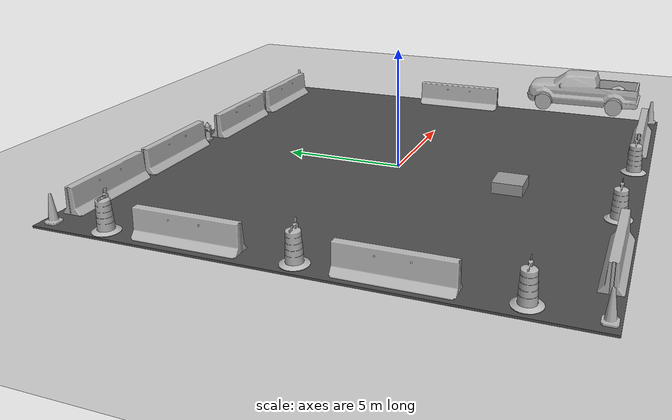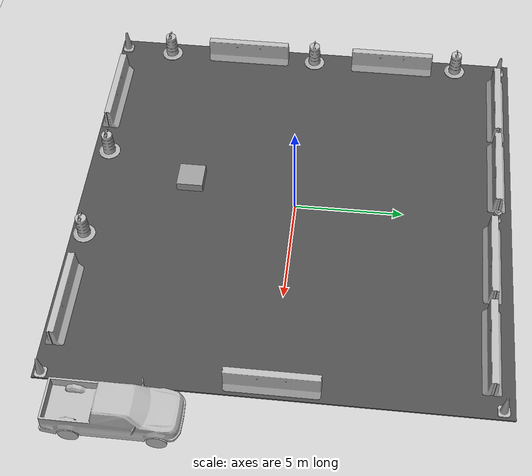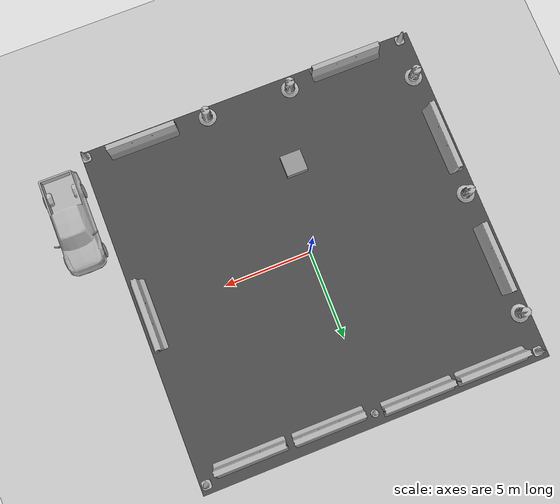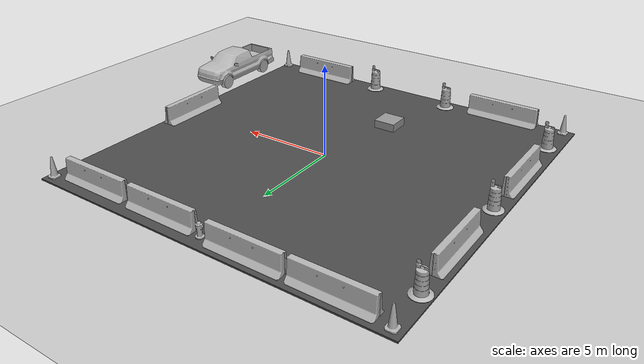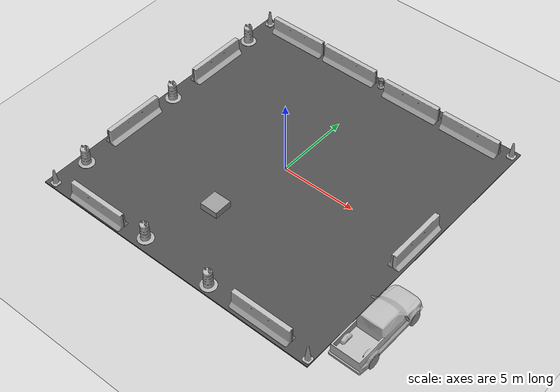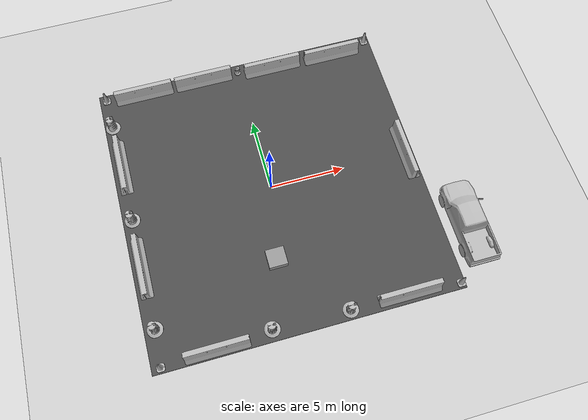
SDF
<sdf version="1.6">
 <world name="default">
  <light name="sun" type="directional">
   <pose>0 0 10 0 -0 0</pose>
   <diffuse>0.8 0.8 0.8 1</diffuse>
   <specular>0.2 0.2 0.2 1</specular>
   <attenuation>
    <range>1000</range>
    <constant>0.9</constant>
    <linear>0.01</linear>
    <quadratic>0.001</quadratic>
   </attenuation>
   <direction>-0.5 0.1 -0.9</direction>
  </light>
  <model name="ground_plane">
   <static>1</static>
   <link name="link">
    <collision name="collision">
     <geometry><plane><normal>0 0 1</normal><size>100 100</size></plane></geometry>
     <surface><friction><ode><mu>100</mu><mu2>50</mu2></ode></friction></surface>
    </collision>
    <visual name="visual">
     <cast_shadows>0</cast_shadows>
     <geometry><plane><normal>0 0 1</normal><size>100 100</size></plane></geometry>
     <material>
      <script><uri>file://media/materials/scripts/gazebo.material</uri><name>Gazebo/Grey</name></script>
     </material>
    </visual>
    <velocity_decay><linear>0</linear><angular>0</angular></velocity_decay>
   </link>
  </model>
  <physics name="default_physics" default="0" type="ode">
   <max_step_size>0.01</max_step_size>
   <real_time_factor>1</real_time_factor>
   <real_time_update_rate>100</real_time_update_rate>
  </physics>
  <scene><ambient>0.4 0.4 0.4 1</ambient><background>0.7 0.7 0.7 1</background><shadows>1</shadows></scene>
  <model name="asphalt_plane">
   <static>1</static>
   <link name="link">
    <collision name="collision"><geometry><box><size>20 20 0.1</size></box></geometry></collision>
    <visual name="visual">
     <cast_shadows>0</cast_shadows>
     <geometry><box><size>20 20 0.1</size></box></geometry>
     <material>
      <script>
       <uri>model://asphalt_plane/materials/scripts</uri>
       <uri>model://asphalt_plane/materials/textures</uri>
       <name>vrc/asphalt</name>
      </script>
     </material>
    </visual>
    <velocity_decay><linear>0</linear><angular>0</angular></velocity_decay>
   </link>
  </model>
  <gravity>0 0 -9.8</gravity>
  <magnetic_field>6e-06 2.3e-05 -4.2e-05</magnetic_field>
  <atmosphere type="adiabatic"/>
  <spherical_coordinates>
   <surface_model>EARTH_WGS84</surface_model>
   <latitude_deg>0</latitude_deg>
   <longitude_deg>0</longitude_deg>
   <elevation>0</elevation>
   <heading_deg>0</heading_deg>
  </spherical_coordinates>
  <model name="drywall_stack">
   <static>1</static>
   <link name="link">
    <collision name="collision">
     <geometry><box><size>1.2192 1.2192 0.5</size></box></geometry>
     <surface><contact><ode><max_vel>0</max_vel><min_depth>0.001</min_depth></ode></contact></surface>
    </collision>
    <visual name="visual">
     <cast_shadows>0</cast_shadows>
     <geometry><box><size>1.2192 1.2192 0.5</size></box></geometry>
     <material>
      <script>
       <uri>model://grey_wall/materials/scripts</uri>
       <uri>model://grey_wall/materials/textures</uri>
       <name>vrc/grey_wall</name>
      </script>
     </material>
    </visual>
    <inertial>
     <inertia><ixx>1</ixx><ixy>0</ixy><ixz>0</ixz><iyy>1</iyy><iyz>0</iyz><izz>1</izz></inertia>
     <mass>1</mass>
    </inertial>
   </link>
   <pose>-1 -5 0.25 0 -0 0</pose>
  </model>
  <model name="Construction Cone">
   <link name="link">
    <collision name="collision">
     <geometry>
      <mesh><scale>10 10 10</scale><uri>model://construction_cone/meshes/construction_cone.dae</uri></mesh>
     </geometry>
    </collision>
    <visual name="visual">
     <geometry>
      <mesh><scale>10 10 10</scale><uri>model://construction_cone/meshes/construction_cone.dae</uri></mesh>
     </geometry>
    </visual>
    <inertial>
     <inertia><ixx>1</ixx><ixy>0</ixy><ixz>0</ixz><iyy>1</iyy><iyz>0</iyz><izz>1</izz></inertia>
     <mass>1</mass>
    </inertial>
   </link>
   <pose>-9.5017 9.51183 0.049102 3e-06 -1e-05 4e-06</pose>
  </model>
  <model name="Construction Cone_0">
   <link name="link">
    <collision name="collision">
     <geometry>
      <mesh><scale>10 10 10</scale><uri>model://construction_cone/meshes/construction_cone.dae</uri></mesh>
     </geometry>
    </collision>
    <visual name="visual">
     <geometry>
      <mesh><scale>10 10 10</scale><uri>model://construction_cone/meshes/construction_cone.dae</uri></mesh>
     </geometry>
    </visual>
    <inertial>
     <inertia><ixx>1</ixx><ixy>0</ixy><ixz>0</ixz><iyy>1</iyy><iyz>0</iyz><izz>1</izz></inertia>
     <mass>1</mass>
    </inertial>
   </link>
   <pose>9.6388 9.50306 0.049102 3e-06 -1e-05 4e-06</pose>
  </model>
  <model name="Construction Cone_1">
   <link name="link">
    <collision name="collision">
     <geometry>
      <mesh><scale>10 10 10</scale><uri>model://construction_cone/meshes/construction_cone.dae</uri></mesh>
     </geometry>
    </collision>
    <visual name="visual">
     <geometry>
      <mesh><scale>10 10 10</scale><uri>model://construction_cone/meshes/construction_cone.dae</uri></mesh>
     </geometry>
    </visual>
    <inertial>
     <inertia><ixx>1</ixx><ixy>0</ixy><ixz>0</ixz><iyy>1</iyy><iyz>0</iyz><izz>1</izz></inertia>
     <mass>1</mass>
    </inertial>
   </link>
   <pose>9.74412 -9.64201 0.049102 3e-06 -1e-05 0.001569</pose>
  </model>
  <model name="Construction Cone_2">
   <link name="link">
    <collision name="collision">
     <geometry>
      <mesh><scale>10 10 10</scale><uri>model://construction_cone/meshes/construction_cone.dae</uri></mesh>
     </geometry>
    </collision>
    <visual name="visual">
     <geometry>
      <mesh><scale>10 10 10</scale><uri>model://construction_cone/meshes/construction_cone.dae</uri></mesh>
     </geometry>
    </visual>
    <inertial>
     <inertia><ixx>1</ixx><ixy>0</ixy><ixz>0</ixz><iyy>1</iyy><iyz>0</iyz><izz>1</izz></inertia>
     <mass>1</mass>
    </inertial>
   </link>
   <pose>-9.41826 -9.66181 0.049102 3e-06 -1e-05 4e-06</pose>
  </model>
  <model name="Construction Barrel">
   <link name="link">
    <inertial>
     <pose>0 0 0.4 0 -0 0</pose>
     <mass>500</mass>
     <inertia><ixx>51.2096</ixx><iyy>51.2096</iyy><izz>25</izz><ixy>0</ixy><ixz>0</ixz><iyz>0</iyz></inertia>
    </inertial>
    <collision name="collision">
     <geometry><mesh><uri>model://construction_barrel/meshes/construction_barrel.dae</uri></mesh></geometry>
    </collision>
    <visual name="visual">
     <geometry><mesh><uri>model://construction_barrel/meshes/construction_barrel.dae</uri></mesh></geometry>
    </visual>
   </link>
   <pose>-9.30864 -7.32999 0.049916 -0.000166 -0.000342 -0.000302</pose>
  </model>
  <model name="Construction Barrel_1">
   <link name="link">
    <inertial>
     <pose>0 0 0.4 0 -0 0</pose>
     <mass>500</mass>
     <inertia><ixx>51.2096</ixx><iyy>51.2096</iyy><izz>25</izz><ixy>0</ixy><ixz>0</ixz><iyz>0</iyz></inertia>
    </inertial>
    <collision name="collision">
     <geometry><mesh><uri>model://construction_barrel/meshes/construction_barrel.dae</uri></mesh></geometry>
    </collision>
    <visual name="visual">
     <geometry><mesh><uri>model://construction_barrel/meshes/construction_barrel.dae</uri></mesh></geometry>
    </visual>
   </link>
   <pose>-9.36627 0.077142 0.049916 -0.000166 -0.000342 -0.000302</pose>
  </model>
  <model name="Construction Barrel_3">
   <link name="link">
    <inertial>
     <pose>0 0 0.4 0 -0 0</pose>
     <mass>500</mass>
     <inertia><ixx>51.2096</ixx><iyy>51.2096</iyy><izz>25</izz><ixy>0</ixy><ixz>0</ixz><iyz>0</iyz></inertia>
    </inertial>
    <collision name="collision">
     <geometry><mesh><uri>model://construction_barrel/meshes/construction_barrel.dae</uri></mesh></geometry>
    </collision>
    <visual name="visual">
     <geometry><mesh><uri>model://construction_barrel/meshes/construction_barrel.dae</uri></mesh></geometry>
    </visual>
   </link>
   <pose>-9.44723 7.27986 0.049916 -0.000166 -0.000342 -0.000302</pose>
  </model>
  <model name="fire_hydrant">
   <static>1</static>
   <link name="link">
    <collision name="collision">
     <geometry><mesh><uri>model://fire_hydrant/meshes/fire_hydrant.dae</uri></mesh></geometry>
    </collision>
    <visual name="visual">
     <geometry><mesh><uri>model://fire_hydrant/meshes/fire_hydrant.dae</uri></mesh></geometry>
    </visual>
   </link>
   <pose>-0.009225 9.3074 0 0 -0 0</pose>
  </model>
  <model name="Construction Barrel_4">
   <link name="link">
    <inertial>
     <pose>0 0 0.4 0 -0 0</pose>
     <mass>500</mass>
     <inertia><ixx>51.2096</ixx><iyy>51.2096</iyy><izz>25</izz><ixy>0</ixy><ixz>0</ixz><iyz>0</iyz></inertia>
    </inertial>
    <collision name="collision">
     <geometry><mesh><uri>model://construction_barrel/meshes/construction_barrel.dae</uri></mesh></geometry>
    </collision>
    <visual name="visual">
     <geometry><mesh><uri>model://construction_barrel/meshes/construction_barrel.dae</uri></mesh></geometry>
    </visual>
   </link>
   <pose>-2.42554 -9.24566 0.049916 -0.000166 -0.000342 -0.000302</pose>
  </model>
  <model name="Construction Barrel_5">
   <link name="link">
    <inertial>
     <pose>0 0 0.4 0 -0 0</pose>
     <mass>500</mass>
     <inertia><ixx>51.2096</ixx><iyy>51.2096</iyy><izz>25</izz><ixy>0</ixy><ixz>0</ixz><iyz>0</iyz></inertia>
    </inertial>
    <collision name="collision">
     <geometry><mesh><uri>model://construction_barrel/meshes/construction_barrel.dae</uri></mesh></geometry>
    </collision>
    <visual name="visual">
     <geometry><mesh><uri>model://construction_barrel/meshes/construction_barrel.dae</uri></mesh></geometry>
    </visual>
   </link>
   <pose>2.54624 -9.39427 0.049916 -0.000166 -0.000342 -0.000302</pose>
  </model>
  <model name="pickup">
   <static>1</static>
   <link name="link">
    <collision name="collision">
     <pose>0 0 0 0 0 -1.5708</pose>
     <geometry><mesh><uri>model://pickup/meshes/pickup.dae</uri></mesh></geometry>
    </collision>
    <visual name="visual">
     <pose>0 0 0 0 0 -1.5708</pose>
     <geometry><mesh><uri>model://pickup/meshes/pickup.dae</uri></mesh></geometry>
    </visual>
   </link>
   <pose>11.5 -6 0 0 -0 1.5707</pose>
  </model>
  <model name="jersey_barrier">
   <static>1</static>
   <link name="link">
    <visual name="visual">
     <geometry><mesh><uri>model://jersey_barrier/meshes/jersey_barrier.dae</uri></mesh></geometry>
    </visual>
    <collision name="upright">
     <pose>0 0 0.5715 0 -0 0</pose>
     <geometry><box><size>4.06542 0.3063 1.143</size></box></geometry>
    </collision>
    <collision name="base">
     <pose>0 0 0.032258 0 -0 0</pose>
     <geometry><box><size>4.06542 0.8107 0.064516</size></box></geometry>
    </collision>
    <collision name="base2">
     <pose>0 0 0.1 0 -0 0</pose>
     <geometry><box><size>4.06542 0.65 0.1</size></box></geometry>
    </collision>
    <collision name="base3">
     <pose>0 0 0.2 0 -0 0</pose>
     <geometry><box><size>4.06542 0.5 0.1</size></box></geometry>
    </collision>
    <collision name="left-angle">
     <pose>0 -0.224 0.2401 0.9 -0 0</pose>
     <geometry><box><size>4.06542 0.5 0.064516</size></box></geometry>
    </collision>
    <collision name="right-angle">
     <pose>0 0.224 0.2401 -0.9 0 0</pose>
     <geometry><box><size>4.06542 0.5 0.064516</size></box></geometry>
    </collision>
   </link>
   <pose>-6.80738 9.3233 0 0 -0 0</pose>
  </model>
  <model name="jersey_barrier_0">
   <static>1</static>
   <link name="link">
    <visual name="visual">
     <geometry><mesh><uri>model://jersey_barrier/meshes/jersey_barrier.dae</uri></mesh></geometry>
    </visual>
    <collision name="upright">
     <pose>0 0 0.5715 0 -0 0</pose>
     <geometry><box><size>4.06542 0.3063 1.143</size></box></geometry>
    </collision>
    <collision name="base">
     <pose>0 0 0.032258 0 -0 0</pose>
     <geometry><box><size>4.06542 0.8107 0.064516</size></box></geometry>
    </collision>
    <collision name="base2">
     <pose>0 0 0.1 0 -0 0</pose>
     <geometry><box><size>4.06542 0.65 0.1</size></box></geometry>
    </collision>
    <collision name="base3">
     <pose>0 0 0.2 0 -0 0</pose>
     <geometry><box><size>4.06542 0.5 0.1</size></box></geometry>
    </collision>
    <collision name="left-angle">
     <pose>0 -0.224 0.2401 0.9 -0 0</pose>
     <geometry><box><size>4.06542 0.5 0.064516</size></box></geometry>
    </collision>
    <collision name="right-angle">
     <pose>0 0.224 0.2401 -0.9 0 0</pose>
     <geometry><box><size>4.06542 0.5 0.064516</size></box></geometry>
    </collision>
   </link>
   <pose>-2.50571 9.32058 0 0 -0 0</pose>
  </model>
  <model name="jersey_barrier_1">
   <static>1</static>
   <link name="link">
    <visual name="visual">
     <geometry><mesh><uri>model://jersey_barrier/meshes/jersey_barrier.dae</uri></mesh></geometry>
    </visual>
    <collision name="upright">
     <pose>0 0 0.5715 0 -0 0</pose>
     <geometry><box><size>4.06542 0.3063 1.143</size></box></geometry>
    </collision>
    <collision name="base">
     <pose>0 0 0.032258 0 -0 0</pose>
     <geometry><box><size>4.06542 0.8107 0.064516</size></box></geometry>
    </collision>
    <collision name="base2">
     <pose>0 0 0.1 0 -0 0</pose>
     <geometry><box><size>4.06542 0.65 0.1</size></box></geometry>
    </collision>
    <collision name="base3">
     <pose>0 0 0.2 0 -0 0</pose>
     <geometry><box><size>4.06542 0.5 0.1</size></box></geometry>
    </collision>
    <collision name="left-angle">
     <pose>0 -0.224 0.2401 0.9 -0 0</pose>
     <geometry><box><size>4.06542 0.5 0.064516</size></box></geometry>
    </collision>
    <collision name="right-angle">
     <pose>0 0.224 0.2401 -0.9 0 0</pose>
     <geometry><box><size>4.06542 0.5 0.064516</size></box></geometry>
    </collision>
   </link>
   <pose>-9.37824 -3.29907 0 0 -0 1.5708</pose>
  </model>
  <model name="jersey_barrier_2">
   <static>1</static>
   <link name="link">
    <visual name="visual">
     <geometry><mesh><uri>model://jersey_barrier/meshes/jersey_barrier.dae</uri></mesh></geometry>
    </visual>
    <collision name="upright">
     <pose>0 0 0.5715 0 -0 0</pose>
     <geometry><box><size>4.06542 0.3063 1.143</size></box></geometry>
    </collision>
    <collision name="base">
     <pose>0 0 0.032258 0 -0 0</pose>
     <geometry><box><size>4.06542 0.8107 0.064516</size></box></geometry>
    </collision>
    <collision name="base2">
     <pose>0 0 0.1 0 -0 0</pose>
     <geometry><box><size>4.06542 0.65 0.1</size></box></geometry>
    </collision>
    <collision name="base3">
     <pose>0 0 0.2 0 -0 0</pose>
     <geometry><box><size>4.06542 0.5 0.1</size></box></geometry>
    </collision>
    <collision name="left-angle">
     <pose>0 -0.224 0.2401 0.9 -0 0</pose>
     <geometry><box><size>4.06542 0.5 0.064516</size></box></geometry>
    </collision>
    <collision name="right-angle">
     <pose>0 0.224 0.2401 -0.9 0 0</pose>
     <geometry><box><size>4.06542 0.5 0.064516</size></box></geometry>
    </collision>
   </link>
   <pose>-9.34114 4.04109 0 0 -0 1.5708</pose>
  </model>
  <model name="jersey_barrier_3">
   <static>1</static>
   <link name="link">
    <visual name="visual">
     <geometry><mesh><uri>model://jersey_barrier/meshes/jersey_barrier.dae</uri></mesh></geometry>
    </visual>
    <collision name="upright">
     <pose>0 0 0.5715 0 -0 0</pose>
     <geometry><box><size>4.06542 0.3063 1.143</size></box></geometry>
    </collision>
    <collision name="base">
     <pose>0 0 0.032258 0 -0 0</pose>
     <geometry><box><size>4.06542 0.8107 0.064516</size></box></geometry>
    </collision>
    <collision name="base2">
     <pose>0 0 0.1 0 -0 0</pose>
     <geometry><box><size>4.06542 0.65 0.1</size></box></geometry>
    </collision>
    <collision name="base3">
     <pose>0 0 0.2 0 -0 0</pose>
     <geometry><box><size>4.06542 0.5 0.1</size></box></geometry>
    </collision>
    <collision name="left-angle">
     <pose>0 -0.224 0.2401 0.9 -0 0</pose>
     <geometry><box><size>4.06542 0.5 0.064516</size></box></geometry>
    </collision>
    <collision name="right-angle">
     <pose>0 0.224 0.2401 -0.9 0 0</pose>
     <geometry><box><size>4.06542 0.5 0.064516</size></box></geometry>
    </collision>
   </link>
   <pose>-5.91557 -9.52548 0 0 -0 0</pose>
  </model>
  <model name="jersey_barrier_4">
   <static>1</static>
   <link name="link">
    <visual name="visual">
     <geometry><mesh><uri>model://jersey_barrier/meshes/jersey_barrier.dae</uri></mesh></geometry>
    </visual>
    <collision name="upright">
     <pose>0 0 0.5715 0 -0 0</pose>
     <geometry><box><size>4.06542 0.3063 1.143</size></box></geometry>
    </collision>
    <collision name="base">
     <pose>0 0 0.032258 0 -0 0</pose>
     <geometry><box><size>4.06542 0.8107 0.064516</size></box></geometry>
    </collision>
    <collision name="base2">
     <pose>0 0 0.1 0 -0 0</pose>
     <geometry><box><size>4.06542 0.65 0.1</size></box></geometry>
    </collision>
    <collision name="base3">
     <pose>0 0 0.2 0 -0 0</pose>
     <geometry><box><size>4.06542 0.5 0.1</size></box></geometry>
    </collision>
    <collision name="left-angle">
     <pose>0 -0.224 0.2401 0.9 -0 0</pose>
     <geometry><box><size>4.06542 0.5 0.064516</size></box></geometry>
    </collision>
    <collision name="right-angle">
     <pose>0 0.224 0.2401 -0.9 0 0</pose>
     <geometry><box><size>4.06542 0.5 0.064516</size></box></geometry>
    </collision>
   </link>
   <pose>6.39443 -9.39745 0 0 -0 0</pose>
  </model>
  <model name="jersey_barrier_6">
   <static>1</static>
   <link name="link">
    <visual name="visual">
     <geometry><mesh><uri>model://jersey_barrier/meshes/jersey_barrier.dae</uri></mesh></geometry>
    </visual>
    <collision name="upright">
     <pose>0 0 0.5715 0 -0 0</pose>
     <geometry><box><size>4.06542 0.3063 1.143</size></box></geometry>
    </collision>
    <collision name="base">
     <pose>0 0 0.032258 0 -0 0</pose>
     <geometry><box><size>4.06542 0.8107 0.064516</size></box></geometry>
    </collision>
    <collision name="base2">
     <pose>0 0 0.1 0 -0 0</pose>
     <geometry><box><size>4.06542 0.65 0.1</size></box></geometry>
    </collision>
    <collision name="base3">
     <pose>0 0 0.2 0 -0 0</pose>
     <geometry><box><size>4.06542 0.5 0.1</size></box></geometry>
    </collision>
    <collision name="left-angle">
     <pose>0 -0.224 0.2401 0.9 -0 0</pose>
     <geometry><box><size>4.06542 0.5 0.064516</size></box></geometry>
    </collision>
    <collision name="right-angle">
     <pose>0 0.224 0.2401 -0.9 0 0</pose>
     <geometry><box><size>4.06542 0.5 0.064516</size></box></geometry>
    </collision>
   </link>
   <pose>2.50767 9.08821 0 0 -0 0</pose>
  </model>
  <model name="jersey_barrier_7">
   <static>1</static>
   <link name="link">
    <visual name="visual">
     <geometry><mesh><uri>model://jersey_barrier/meshes/jersey_barrier.dae</uri></mesh></geometry>
    </visual>
    <collision name="upright">
     <pose>0 0 0.5715 0 -0 0</pose>
     <geometry><box><size>4.06542 0.3063 1.143</size></box></geometry>
    </collision>
    <collision name="base">
     <pose>0 0 0.032258 0 -0 0</pose>
     <geometry><box><size>4.06542 0.8107 0.064516</size></box></geometry>
    </collision>
    <collision name="base2">
     <pose>0 0 0.1 0 -0 0</pose>
     <geometry><box><size>4.06542 0.65 0.1</size></box></geometry>
    </collision>
    <collision name="base3">
     <pose>0 0 0.2 0 -0 0</pose>
     <geometry><box><size>4.06542 0.5 0.1</size></box></geometry>
    </collision>
    <collision name="left-angle">
     <pose>0 -0.224 0.2401 0.9 -0 0</pose>
     <geometry><box><size>4.06542 0.5 0.064516</size></box></geometry>
    </collision>
    <collision name="right-angle">
     <pose>0 0.224 0.2401 -0.9 0 0</pose>
     <geometry><box><size>4.06542 0.5 0.064516</size></box></geometry>
    </collision>
   </link>
   <pose>6.95195 9.02949 0 0 -0 0</pose>
  </model>
  <model name="jersey_barrier_5">
   <static>1</static>
   <link name="link">
    <visual name="visual">
     <geometry><mesh><uri>model://jersey_barrier/meshes/jersey_barrier.dae</uri></mesh></geometry>
    </visual>
    <collision name="upright">
     <pose>0 0 0.5715 0 -0 0</pose>
     <geometry><box><size>4.06542 0.3063 1.143</size></box></geometry>
    </collision>
    <collision name="base">
     <pose>0 0 0.032258 0 -0 0</pose>
     <geometry><box><size>4.06542 0.8107 0.064516</size></box></geometry>
    </collision>
    <collision name="base2">
     <pose>0 0 0.1 0 -0 0</pose>
     <geometry><box><size>4.06542 0.65 0.1</size></box></geometry>
    </collision>
    <collision name="base3">
     <pose>0 0 0.2 0 -0 0</pose>
     <geometry><box><size>4.06542 0.5 0.1</size></box></geometry>
    </collision>
    <collision name="left-angle">
     <pose>0 -0.224 0.2401 0.9 -0 0</pose>
     <geometry><box><size>4.06542 0.5 0.064516</size></box></geometry>
    </collision>
    <collision name="right-angle">
     <pose>0 0.224 0.2401 -0.9 0 0</pose>
     <geometry><box><size>4.06542 0.5 0.064516</size></box></geometry>
    </collision>
   </link>
   <pose>9.44437 0.017343 0 0 -0 1.5708</pose>
  </model>
  <audio><device>default</device></audio>
 </world>
</sdf>
